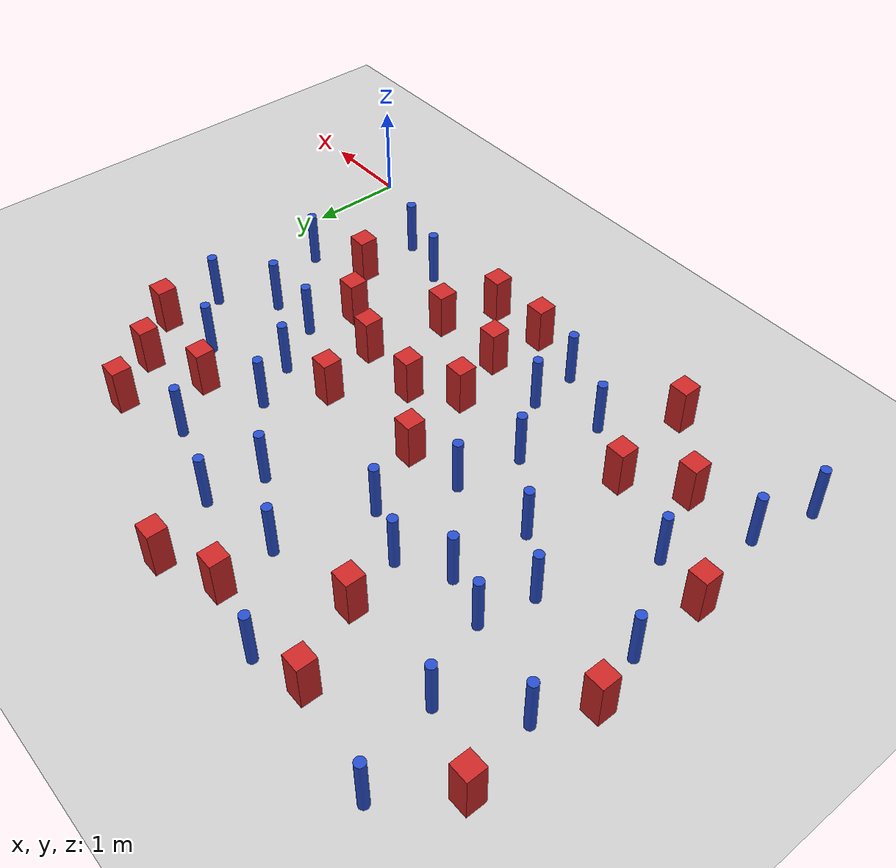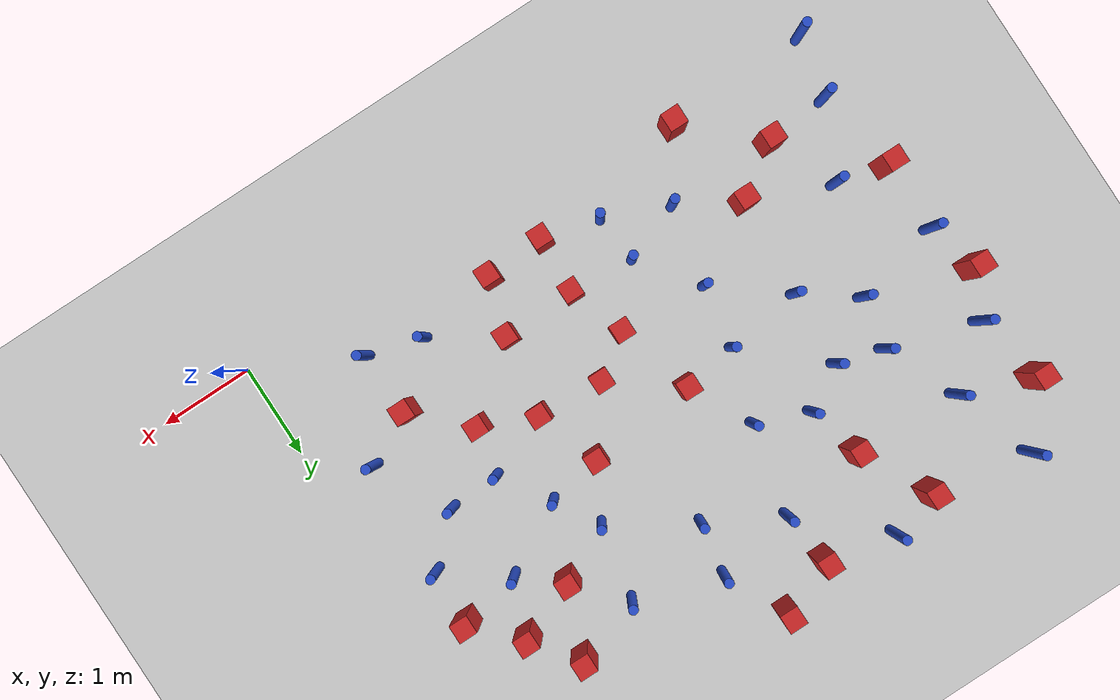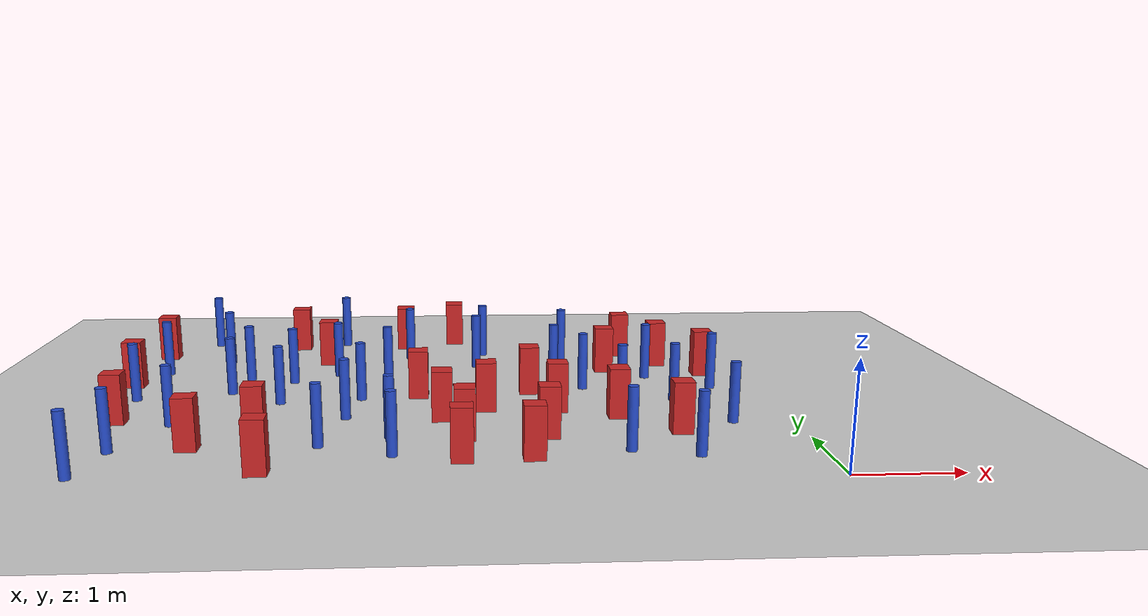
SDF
<sdf version="1.6">
 <world name="default">
  <model name="ground_plane">
   <static>1</static>
   <link name="link">
    <collision name="collision">
     <geometry><plane><normal>0 0 1</normal><size>100 100</size></plane></geometry>
     <surface><friction><ode><mu>100</mu><mu2>50</mu2></ode></friction></surface>
    </collision>
    <visual name="visual">
     <cast_shadows>0</cast_shadows>
     <geometry><plane><normal>0 0 1</normal><size>100 100</size></plane></geometry>
     <material>
      <ambient>1.0 1.0 1.0 1.0</ambient>
      <diffuse>0.8 0.8 0.8 1.0</diffuse>
      <specular>0.01 0.01 0.01 1.000000</specular>
     </material>
    </visual>
   </link>
  </model>
  <model name="pole_obstacle1">
   <static>true</static>
   <pose>-4.2360421505 2.48236113303 7.38925637345e-09 -8.47170692798e-08 1.24976764937e-08 -1.74513093023e-07</pose>
   <link name="link">
    <pose>0 0 0.3 0 -0 0</pose>
    <inertial>
     <mass>1</mass>
     <inertia><ixx>0.145833</ixx><ixy>0</ixy><ixz>0</ixz><iyy>0.145833</iyy><iyz>0</iyz><izz>0.125</izz></inertia>
    </inertial>
    <collision name="collision">
     <geometry><cylinder><radius>0.05</radius><length>.6</length></cylinder></geometry>
    </collision>
    <visual name="visual">
     <geometry><cylinder><radius>0.05</radius><length>.6</length></cylinder></geometry>
     <material>
      <script><name>Gazebo/Blue</name><uri>file://media/materials/scripts/gazebo.material</uri></script>
     </material>
    </visual>
   </link>
  </model>
  <model name="square_post_obstacle6">
   <static>true</static>
   <pose>-3.19749269244 1.14197946729 1.91545236811e-07 -7.35059704564e-06 1.12565212e-07 2.39332434364e-05</pose>
   <link name="link">
    <pose>0 0 0.25 0 -0 0</pose>
    <inertial>
     <mass>100</mass>
     <inertia>
      <ixx>0.166667</ixx>
      <ixy>0</ixy>
      <ixz>0</ixz>
      <iyy>0.166667</iyy>
      <iyz>0</iyz>
      <izz>0.166667</izz>
     </inertia>
    </inertial>
    <collision name="collision"><geometry><box><size>.2 .2 .5</size></box></geometry></collision>
    <visual name="visual">
     <geometry><box><size>.2 .2 .5</size></box></geometry>
     <material>
      <script><name>Gazebo/Red</name><uri>file://media/materials/scripts/gazebo.material</uri></script>
     </material>
    </visual>
   </link>
  </model>
  <model name="square_post_obstacle12">
   <static>true</static>
   <pose>-3.40680719447 1.74488713327 1.91545236811e-07 -7.35059704564e-06 1.12565212e-07 2.39332434364e-05</pose>
   <link name="link">
    <pose>0 0 0.25 0 -0 0</pose>
    <inertial>
     <mass>100</mass>
     <inertia>
      <ixx>0.166667</ixx>
      <ixy>0</ixy>
      <ixz>0</ixz>
      <iyy>0.166667</iyy>
      <iyz>0</iyz>
      <izz>0.166667</izz>
     </inertia>
    </inertial>
    <collision name="collision"><geometry><box><size>.2 .2 .5</size></box></geometry></collision>
    <visual name="visual">
     <geometry><box><size>.2 .2 .5</size></box></geometry>
     <material>
      <script><name>Gazebo/Red</name><uri>file://media/materials/scripts/gazebo.material</uri></script>
     </material>
    </visual>
   </link>
  </model>
  <model name="square_post_obstacle17">
   <static>true</static>
   <pose>-5.67544785788 0.962281058583 1.91545236811e-07 -7.35059704564e-06 1.12565212e-07 2.39332434364e-05</pose>
   <link name="link">
    <pose>0 0 0.25 0 -0 0</pose>
    <inertial>
     <mass>100</mass>
     <inertia>
      <ixx>0.166667</ixx>
      <ixy>0</ixy>
      <ixz>0</ixz>
      <iyy>0.166667</iyy>
      <iyz>0</iyz>
      <izz>0.166667</izz>
     </inertia>
    </inertial>
    <collision name="collision"><geometry><box><size>.2 .2 .5</size></box></geometry></collision>
    <visual name="visual">
     <geometry><box><size>.2 .2 .5</size></box></geometry>
     <material>
      <script><name>Gazebo/Red</name><uri>file://media/materials/scripts/gazebo.material</uri></script>
     </material>
    </visual>
   </link>
  </model>
  <model name="pole_obstacle29">
   <static>true</static>
   <pose>-5.50109739232 3.32762876711 7.38925637345e-09 -8.47170692798e-08 1.24976764937e-08 -1.74513093023e-07</pose>
   <link name="link">
    <pose>0 0 0.3 0 -0 0</pose>
    <inertial>
     <mass>1</mass>
     <inertia><ixx>0.145833</ixx><ixy>0</ixy><ixz>0</ixz><iyy>0.145833</iyy><iyz>0</iyz><izz>0.125</izz></inertia>
    </inertial>
    <collision name="collision">
     <geometry><cylinder><radius>0.05</radius><length>.6</length></cylinder></geometry>
    </collision>
    <visual name="visual">
     <geometry><cylinder><radius>0.05</radius><length>.6</length></cylinder></geometry>
     <material>
      <script><name>Gazebo/Blue</name><uri>file://media/materials/scripts/gazebo.material</uri></script>
     </material>
    </visual>
   </link>
  </model>
  <model name="square_post_obstacle24">
   <static>true</static>
   <pose>-6.54042031129 1.79965636281 1.91545236811e-07 -7.35059704564e-06 1.12565212e-07 2.39332434364e-05</pose>
   <link name="link">
    <pose>0 0 0.25 0 -0 0</pose>
    <inertial>
     <mass>100</mass>
     <inertia>
      <ixx>0.166667</ixx>
      <ixy>0</ixy>
      <ixz>0</ixz>
      <iyy>0.166667</iyy>
      <iyz>0</iyz>
      <izz>0.166667</izz>
     </inertia>
    </inertial>
    <collision name="collision"><geometry><box><size>.2 .2 .5</size></box></geometry></collision>
    <visual name="visual">
     <geometry><box><size>.2 .2 .5</size></box></geometry>
     <material>
      <script><name>Gazebo/Red</name><uri>file://media/materials/scripts/gazebo.material</uri></script>
     </material>
    </visual>
   </link>
  </model>
  <model name="pole_obstacle36">
   <static>true</static>
   <pose>-1.17242458827 3.20401034558 7.38925637345e-09 -8.47170692799e-08 1.24976765053e-08 -1.74513093017e-07</pose>
   <link name="link">
    <pose>0 0 0.3 0 -0 0</pose>
    <inertial>
     <mass>1</mass>
     <inertia><ixx>0.145833</ixx><ixy>0</ixy><ixz>0</ixz><iyy>0.145833</iyy><iyz>0</iyz><izz>0.125</izz></inertia>
    </inertial>
    <collision name="collision">
     <geometry><cylinder><radius>0.05</radius><length>.6</length></cylinder></geometry>
    </collision>
    <visual name="visual">
     <geometry><cylinder><radius>0.05</radius><length>.6</length></cylinder></geometry>
     <material>
      <script><name>Gazebo/Blue</name><uri>file://media/materials/scripts/gazebo.material</uri></script>
     </material>
    </visual>
   </link>
  </model>
  <model name="pole_obstacle37">
   <static>true</static>
   <pose>-0.548030401633 2.74096861442 7.38925637345e-09 -8.47170692799e-08 1.24976765084e-08 -1.74513093016e-07</pose>
   <link name="link">
    <pose>0 0 0.3 0 -0 0</pose>
    <inertial>
     <mass>1</mass>
     <inertia><ixx>0.145833</ixx><ixy>0</ixy><ixz>0</ixz><iyy>0.145833</iyy><iyz>0</iyz><izz>0.125</izz></inertia>
    </inertial>
    <collision name="collision">
     <geometry><cylinder><radius>0.05</radius><length>.6</length></cylinder></geometry>
    </collision>
    <visual name="visual">
     <geometry><cylinder><radius>0.05</radius><length>.6</length></cylinder></geometry>
     <material>
      <script><name>Gazebo/Blue</name><uri>file://media/materials/scripts/gazebo.material</uri></script>
     </material>
    </visual>
   </link>
  </model>
  <model name="pole_obstacle40">
   <static>true</static>
   <pose>-3.99607726309 3.23321874853 7.38925637345e-09 -8.47170692797e-08 1.24976764812e-08 -1.74513093031e-07</pose>
   <link name="link">
    <pose>0 0 0.3 0 -0 0</pose>
    <inertial>
     <mass>1</mass>
     <inertia><ixx>0.145833</ixx><ixy>0</ixy><ixz>0</ixz><iyy>0.145833</iyy><iyz>0</iyz><izz>0.125</izz></inertia>
    </inertial>
    <collision name="collision">
     <geometry><cylinder><radius>0.05</radius><length>.6</length></cylinder></geometry>
    </collision>
    <visual name="visual">
     <geometry><cylinder><radius>0.05</radius><length>.6</length></cylinder></geometry>
     <material>
      <script><name>Gazebo/Blue</name><uri>file://media/materials/scripts/gazebo.material</uri></script>
     </material>
    </visual>
   </link>
  </model>
  <model name="pole_obstacle53">
   <static>true</static>
   <pose>-1.72043356303 0.71661283262 7.38925637345e-09 -8.47170692799e-08 1.24976765075e-08 -1.74513093017e-07</pose>
   <link name="link">
    <pose>0 0 0.3 0 -0 0</pose>
    <inertial>
     <mass>1</mass>
     <inertia><ixx>0.145833</ixx><ixy>0</ixy><ixz>0</ixz><iyy>0.145833</iyy><iyz>0</iyz><izz>0.125</izz></inertia>
    </inertial>
    <collision name="collision">
     <geometry><cylinder><radius>0.05</radius><length>.6</length></cylinder></geometry>
    </collision>
    <visual name="visual">
     <geometry><cylinder><radius>0.05</radius><length>.6</length></cylinder></geometry>
     <material>
      <script><name>Gazebo/Blue</name><uri>file://media/materials/scripts/gazebo.material</uri></script>
     </material>
    </visual>
   </link>
  </model>
  <model name="square_post_obstacle47">
   <static>true</static>
   <pose>-2.49701756977 2.6727672284 1.91545236811e-07 -7.35059704564e-06 1.12565212e-07 2.39332434364e-05</pose>
   <link name="link">
    <pose>0 0 0.25 0 -0 0</pose>
    <inertial>
     <mass>100</mass>
     <inertia>
      <ixx>0.166667</ixx>
      <ixy>0</ixy>
      <ixz>0</ixz>
      <iyy>0.166667</iyy>
      <iyz>0</iyz>
      <izz>0.166667</izz>
     </inertia>
    </inertial>
    <collision name="collision"><geometry><box><size>.2 .2 .5</size></box></geometry></collision>
    <visual name="visual">
     <geometry><box><size>.2 .2 .5</size></box></geometry>
     <material>
      <script><name>Gazebo/Red</name><uri>file://media/materials/scripts/gazebo.material</uri></script>
     </material>
    </visual>
   </link>
  </model>
  <model name="pole_obstacle64">
   <static>true</static>
   <pose>-5.0129639751 3.18422711281 7.38925637345e-09 -8.47170692798e-08 1.24976764937e-08 -1.74513093023e-07</pose>
   <link name="link">
    <pose>0 0 0.3 0 -0 0</pose>
    <inertial>
     <mass>1</mass>
     <inertia><ixx>0.145833</ixx><ixy>0</ixy><ixz>0</ixz><iyy>0.145833</iyy><iyz>0</iyz><izz>0.125</izz></inertia>
    </inertial>
    <collision name="collision">
     <geometry><cylinder><radius>0.05</radius><length>.6</length></cylinder></geometry>
    </collision>
    <visual name="visual">
     <geometry><cylinder><radius>0.05</radius><length>.6</length></cylinder></geometry>
     <material>
      <script><name>Gazebo/Blue</name><uri>file://media/materials/scripts/gazebo.material</uri></script>
     </material>
    </visual>
   </link>
  </model>
  <model name="pole_obstacle65">
   <static>true</static>
   <pose>-6.50943564989 0.240296556773 7.38925637345e-09 -8.471706928e-08 1.24976765136e-08 -1.74513093014e-07</pose>
   <link name="link">
    <pose>0 0 0.3 0 -0 0</pose>
    <inertial>
     <mass>1</mass>
     <inertia><ixx>0.145833</ixx><ixy>0</ixy><ixz>0</ixz><iyy>0.145833</iyy><iyz>0</iyz><izz>0.125</izz></inertia>
    </inertial>
    <collision name="collision">
     <geometry><cylinder><radius>0.05</radius><length>.6</length></cylinder></geometry>
    </collision>
    <visual name="visual">
     <geometry><cylinder><radius>0.05</radius><length>.6</length></cylinder></geometry>
     <material>
      <script><name>Gazebo/Blue</name><uri>file://media/materials/scripts/gazebo.material</uri></script>
     </material>
    </visual>
   </link>
  </model>
  <model name="pole_obstacle66">
   <static>true</static>
   <pose>-4.55013554658 3.45695690446 7.38925637345e-09 -8.47170692798e-08 1.24976764937e-08 -1.74513093023e-07</pose>
   <link name="link">
    <pose>0 0 0.3 0 -0 0</pose>
    <inertial>
     <mass>1</mass>
     <inertia><ixx>0.145833</ixx><ixy>0</ixy><ixz>0</ixz><iyy>0.145833</iyy><iyz>0</iyz><izz>0.125</izz></inertia>
    </inertial>
    <collision name="collision">
     <geometry><cylinder><radius>0.05</radius><length>.6</length></cylinder></geometry>
    </collision>
    <visual name="visual">
     <geometry><cylinder><radius>0.05</radius><length>.6</length></cylinder></geometry>
     <material>
      <script><name>Gazebo/Blue</name><uri>file://media/materials/scripts/gazebo.material</uri></script>
     </material>
    </visual>
   </link>
  </model>
  <model name="square_post_obstacle50">
   <static>true</static>
   <pose>-6.61699101797 4.38110211461 1.91545236811e-07 -7.35059704564e-06 1.12565212e-07 2.39332434364e-05</pose>
   <link name="link">
    <pose>0 0 0.25 0 -0 0</pose>
    <inertial>
     <mass>100</mass>
     <inertia>
      <ixx>0.166667</ixx>
      <ixy>0</ixy>
      <ixz>0</ixz>
      <iyy>0.166667</iyy>
      <iyz>0</iyz>
      <izz>0.166667</izz>
     </inertia>
    </inertial>
    <collision name="collision"><geometry><box><size>.2 .2 .5</size></box></geometry></collision>
    <visual name="visual">
     <geometry><box><size>.2 .2 .5</size></box></geometry>
     <material>
      <script><name>Gazebo/Red</name><uri>file://media/materials/scripts/gazebo.material</uri></script>
     </material>
    </visual>
   </link>
  </model>
  <model name="square_post_obstacle59">
   <static>true</static>
   <pose>-5.13547339799 1.32071894448 1.91545236811e-07 -7.35059704564e-06 1.12565212e-07 2.39332434364e-05</pose>
   <link name="link">
    <pose>0 0 0.25 0 -0 0</pose>
    <inertial>
     <mass>100</mass>
     <inertia>
      <ixx>0.166667</ixx>
      <ixy>0</ixy>
      <ixz>0</ixz>
      <iyy>0.166667</iyy>
      <iyz>0</iyz>
      <izz>0.166667</izz>
     </inertia>
    </inertial>
    <collision name="collision"><geometry><box><size>.2 .2 .5</size></box></geometry></collision>
    <visual name="visual">
     <geometry><box><size>.2 .2 .5</size></box></geometry>
     <material>
      <script><name>Gazebo/Red</name><uri>file://media/materials/scripts/gazebo.material</uri></script>
     </material>
    </visual>
   </link>
  </model>
  <model name="pole_obstacle71">
   <static>true</static>
   <pose>-1.13200319283 0.549994442795 7.38925637345e-09 -8.47170692799e-08 1.24976765051e-08 -1.74513093017e-07</pose>
   <link name="link">
    <pose>0 0 0.3 0 -0 0</pose>
    <inertial>
     <mass>1</mass>
     <inertia><ixx>0.145833</ixx><ixy>0</ixy><ixz>0</ixz><iyy>0.145833</iyy><iyz>0</iyz><izz>0.125</izz></inertia>
    </inertial>
    <collision name="collision">
     <geometry><cylinder><radius>0.05</radius><length>.6</length></cylinder></geometry>
    </collision>
    <visual name="visual">
     <geometry><cylinder><radius>0.05</radius><length>.6</length></cylinder></geometry>
     <material>
      <script><name>Gazebo/Blue</name><uri>file://media/materials/scripts/gazebo.material</uri></script>
     </material>
    </visual>
   </link>
  </model>
  <model name="pole_obstacle72">
   <static>true</static>
   <pose>-6.45422483924 3.61848141426 7.38925637345e-09 -8.47170692798e-08 1.24976764937e-08 -1.74513093023e-07</pose>
   <link name="link">
    <pose>0 0 0.3 0 -0 0</pose>
    <inertial>
     <mass>1</mass>
     <inertia><ixx>0.145833</ixx><ixy>0</ixy><ixz>0</ixz><iyy>0.145833</iyy><iyz>0</iyz><izz>0.125</izz></inertia>
    </inertial>
    <collision name="collision">
     <geometry><cylinder><radius>0.05</radius><length>.6</length></cylinder></geometry>
    </collision>
    <visual name="visual">
     <geometry><cylinder><radius>0.05</radius><length>.6</length></cylinder></geometry>
     <material>
      <script><name>Gazebo/Blue</name><uri>file://media/materials/scripts/gazebo.material</uri></script>
     </material>
    </visual>
   </link>
  </model>
  <model name="square_post_obstacle62">
   <static>true</static>
   <pose>-0.951710930799 3.79193985902 1.91545236811e-07 -7.35059704564e-06 1.12565212e-07 2.39332434364e-05</pose>
   <link name="link">
    <pose>0 0 0.25 0 -0 0</pose>
    <inertial>
     <mass>100</mass>
     <inertia>
      <ixx>0.166667</ixx>
      <ixy>0</ixy>
      <ixz>0</ixz>
      <iyy>0.166667</iyy>
      <iyz>0</iyz>
      <izz>0.166667</izz>
     </inertia>
    </inertial>
    <collision name="collision"><geometry><box><size>.2 .2 .5</size></box></geometry></collision>
    <visual name="visual">
     <geometry><box><size>.2 .2 .5</size></box></geometry>
     <material>
      <script><name>Gazebo/Red</name><uri>file://media/materials/scripts/gazebo.material</uri></script>
     </material>
    </visual>
   </link>
  </model>
  <model name="pole_obstacle79">
   <static>true</static>
   <pose>-4.51929696616 0.965388833062 7.38925637345e-09 -8.471706928e-08 1.24976765166e-08 -1.74513093011e-07</pose>
   <link name="link">
    <pose>0 0 0.3 0 -0 0</pose>
    <inertial>
     <mass>1</mass>
     <inertia><ixx>0.145833</ixx><ixy>0</ixy><ixz>0</ixz><iyy>0.145833</iyy><iyz>0</iyz><izz>0.125</izz></inertia>
    </inertial>
    <collision name="collision">
     <geometry><cylinder><radius>0.05</radius><length>.6</length></cylinder></geometry>
    </collision>
    <visual name="visual">
     <geometry><cylinder><radius>0.05</radius><length>.6</length></cylinder></geometry>
     <material>
      <script><name>Gazebo/Blue</name><uri>file://media/materials/scripts/gazebo.material</uri></script>
     </material>
    </visual>
   </link>
  </model>
  <model name="pole_obstacle88">
   <static>true</static>
   <pose>-6.3632418033 0.899988171952 7.38925637345e-09 -8.47170692799e-08 1.24976765038e-08 -1.74513093018e-07</pose>
   <link name="link">
    <pose>0 0 0.3 0 -0 0</pose>
    <inertial>
     <mass>1</mass>
     <inertia><ixx>0.145833</ixx><ixy>0</ixy><ixz>0</ixz><iyy>0.145833</iyy><iyz>0</iyz><izz>0.125</izz></inertia>
    </inertial>
    <collision name="collision">
     <geometry><cylinder><radius>0.05</radius><length>.6</length></cylinder></geometry>
    </collision>
    <visual name="visual">
     <geometry><cylinder><radius>0.05</radius><length>.6</length></cylinder></geometry>
     <material>
      <script><name>Gazebo/Blue</name><uri>file://media/materials/scripts/gazebo.material</uri></script>
     </material>
    </visual>
   </link>
  </model>
  <model name="square_post_obstacle78">
   <static>true</static>
   <pose>-5.10941186336 4.78435437416 1.91545236811e-07 -7.35059704564e-06 1.12565212e-07 2.39332434364e-05</pose>
   <link name="link">
    <pose>0 0 0.25 0 -0 0</pose>
    <inertial>
     <mass>100</mass>
     <inertia>
      <ixx>0.166667</ixx>
      <ixy>0</ixy>
      <ixz>0</ixz>
      <iyy>0.166667</iyy>
      <iyz>0</iyz>
      <izz>0.166667</izz>
     </inertia>
    </inertial>
    <collision name="collision"><geometry><box><size>.2 .2 .5</size></box></geometry></collision>
    <visual name="visual">
     <geometry><box><size>.2 .2 .5</size></box></geometry>
     <material>
      <script><name>Gazebo/Red</name><uri>file://media/materials/scripts/gazebo.material</uri></script>
     </material>
    </visual>
   </link>
  </model>
  <model name="pole_obstacle89">
   <static>true</static>
   <pose>-6.15603214442 4.98619996309 7.38925637345e-09 -8.47170692796e-08 1.24976764786e-08 -1.74513093032e-07</pose>
   <link name="link">
    <pose>0 0 0.3 0 -0 0</pose>
    <inertial>
     <mass>1</mass>
     <inertia><ixx>0.145833</ixx><ixy>0</ixy><ixz>0</ixz><iyy>0.145833</iyy><iyz>0</iyz><izz>0.125</izz></inertia>
    </inertial>
    <collision name="collision">
     <geometry><cylinder><radius>0.05</radius><length>.6</length></cylinder></geometry>
    </collision>
    <visual name="visual">
     <geometry><cylinder><radius>0.05</radius><length>.6</length></cylinder></geometry>
     <material>
      <script><name>Gazebo/Blue</name><uri>file://media/materials/scripts/gazebo.material</uri></script>
     </material>
    </visual>
   </link>
  </model>
  <model name="square_post_obstacle85">
   <static>true</static>
   <pose>-2.26279785756 1.99849056249 1.91545236811e-07 -7.35059704564e-06 1.12565212e-07 2.39332434364e-05</pose>
   <link name="link">
    <pose>0 0 0.25 0 -0 0</pose>
    <inertial>
     <mass>100</mass>
     <inertia>
      <ixx>0.166667</ixx>
      <ixy>0</ixy>
      <ixz>0</ixz>
      <iyy>0.166667</iyy>
      <iyz>0</iyz>
      <izz>0.166667</izz>
     </inertia>
    </inertial>
    <collision name="collision"><geometry><box><size>.2 .2 .5</size></box></geometry></collision>
    <visual name="visual">
     <geometry><box><size>.2 .2 .5</size></box></geometry>
     <material>
      <script><name>Gazebo/Red</name><uri>file://media/materials/scripts/gazebo.material</uri></script>
     </material>
    </visual>
   </link>
  </model>
  <model name="square_post_obstacle86">
   <static>true</static>
   <pose>-2.41820028607 1.16444975487 1.91545236811e-07 -7.35059704564e-06 1.12565212e-07 2.39332434364e-05</pose>
   <link name="link">
    <pose>0 0 0.25 0 -0 0</pose>
    <inertial>
     <mass>100</mass>
     <inertia>
      <ixx>0.166667</ixx>
      <ixy>0</ixy>
      <ixz>0</ixz>
      <iyy>0.166667</iyy>
      <iyz>0</iyz>
      <izz>0.166667</izz>
     </inertia>
    </inertial>
    <collision name="collision"><geometry><box><size>.2 .2 .5</size></box></geometry></collision>
    <visual name="visual">
     <geometry><box><size>.2 .2 .5</size></box></geometry>
     <material>
      <script><name>Gazebo/Red</name><uri>file://media/materials/scripts/gazebo.material</uri></script>
     </material>
    </visual>
   </link>
  </model>
  <model name="pole_obstacle100">
   <static>true</static>
   <pose>-0.605797346407 1.51551499743 7.38925637345e-09 -8.47170692799e-08 1.24976765033e-08 -1.7451309302e-07</pose>
   <link name="link">
    <pose>0 0 0.3 0 -0 0</pose>
    <inertial>
     <mass>1</mass>
     <inertia><ixx>0.145833</ixx><ixy>0</ixy><ixz>0</ixz><iyy>0.145833</iyy><iyz>0</iyz><izz>0.125</izz></inertia>
    </inertial>
    <collision name="collision">
     <geometry><cylinder><radius>0.05</radius><length>.6</length></cylinder></geometry>
    </collision>
    <visual name="visual">
     <geometry><cylinder><radius>0.05</radius><length>.6</length></cylinder></geometry>
     <material>
      <script><name>Gazebo/Blue</name><uri>file://media/materials/scripts/gazebo.material</uri></script>
     </material>
    </visual>
   </link>
  </model>
  <model name="square_post_obstacle95">
   <static>true</static>
   <pose>-4.71229022899 4.03396715074 1.91545236811e-07 -7.35059704564e-06 1.12565212e-07 2.39332434364e-05</pose>
   <link name="link">
    <pose>0 0 0.25 0 -0 0</pose>
    <inertial>
     <mass>100</mass>
     <inertia>
      <ixx>0.166667</ixx>
      <ixy>0</ixy>
      <ixz>0</ixz>
      <iyy>0.166667</iyy>
      <iyz>0</iyz>
      <izz>0.166667</izz>
     </inertia>
    </inertial>
    <collision name="collision"><geometry><box><size>.2 .2 .5</size></box></geometry></collision>
    <visual name="visual">
     <geometry><box><size>.2 .2 .5</size></box></geometry>
     <material>
      <script><name>Gazebo/Red</name><uri>file://media/materials/scripts/gazebo.material</uri></script>
     </material>
    </visual>
   </link>
  </model>
  <model name="square_post_obstacle100">
   <static>true</static>
   <pose>-1.68737316467 1.75894810027 1.91545236811e-07 -7.35059704564e-06 1.12565212e-07 2.39332434364e-05</pose>
   <link name="link">
    <pose>0 0 0.25 0 -0 0</pose>
    <inertial>
     <mass>100</mass>
     <inertia>
      <ixx>0.166667</ixx>
      <ixy>0</ixy>
      <ixz>0</ixz>
      <iyy>0.166667</iyy>
      <iyz>0</iyz>
      <izz>0.166667</izz>
     </inertia>
    </inertial>
    <collision name="collision"><geometry><box><size>.2 .2 .5</size></box></geometry></collision>
    <visual name="visual">
     <geometry><box><size>.2 .2 .5</size></box></geometry>
     <material>
      <script><name>Gazebo/Red</name><uri>file://media/materials/scripts/gazebo.material</uri></script>
     </material>
    </visual>
   </link>
  </model>
  <model name="pole_obstacle108">
   <static>true</static>
   <pose>-1.02901272563 2.29917134424 7.38925637345e-09 -8.47170692799e-08 1.24976765076e-08 -1.74513093016e-07</pose>
   <link name="link">
    <pose>0 0 0.3 0 -0 0</pose>
    <inertial>
     <mass>1</mass>
     <inertia><ixx>0.145833</ixx><ixy>0</ixy><ixz>0</ixz><iyy>0.145833</iyy><iyz>0</iyz><izz>0.125</izz></inertia>
    </inertial>
    <collision name="collision">
     <geometry><cylinder><radius>0.05</radius><length>.6</length></cylinder></geometry>
    </collision>
    <visual name="visual">
     <geometry><cylinder><radius>0.05</radius><length>.6</length></cylinder></geometry>
     <material>
      <script><name>Gazebo/Blue</name><uri>file://media/materials/scripts/gazebo.material</uri></script>
     </material>
    </visual>
   </link>
  </model>
  <model name="pole_obstacle110">
   <static>true</static>
   <pose>-2.18471386051 3.24580752355 7.38925637345e-09 -8.47170692798e-08 1.24976764939e-08 -1.74513093025e-07</pose>
   <link name="link">
    <pose>0 0 0.3 0 -0 0</pose>
    <inertial>
     <mass>1</mass>
     <inertia><ixx>0.145833</ixx><ixy>0</ixy><ixz>0</ixz><iyy>0.145833</iyy><iyz>0</iyz><izz>0.125</izz></inertia>
    </inertial>
    <collision name="collision">
     <geometry><cylinder><radius>0.05</radius><length>.6</length></cylinder></geometry>
    </collision>
    <visual name="visual">
     <geometry><cylinder><radius>0.05</radius><length>.6</length></cylinder></geometry>
     <material>
      <script><name>Gazebo/Blue</name><uri>file://media/materials/scripts/gazebo.material</uri></script>
     </material>
    </visual>
   </link>
  </model>
  <model name="square_post_obstacle104">
   <static>true</static>
   <pose>-2.59971655476 0.569219339135 1.91545236811e-07 -7.35059704564e-06 1.12565212e-07 2.39332434364e-05</pose>
   <link name="link">
    <pose>0 0 0.25 0 -0 0</pose>
    <inertial>
     <mass>100</mass>
     <inertia>
      <ixx>0.166667</ixx>
      <ixy>0</ixy>
      <ixz>0</ixz>
      <iyy>0.166667</iyy>
      <iyz>0</iyz>
      <izz>0.166667</izz>
     </inertia>
    </inertial>
    <collision name="collision"><geometry><box><size>.2 .2 .5</size></box></geometry></collision>
    <visual name="visual">
     <geometry><box><size>.2 .2 .5</size></box></geometry>
     <material>
      <script><name>Gazebo/Red</name><uri>file://media/materials/scripts/gazebo.material</uri></script>
     </material>
    </visual>
   </link>
  </model>
  <model name="square_post_obstacle105">
   <static>true</static>
   <pose>-1.59325804699 3.53784390911 1.91545236811e-07 -7.35059704564e-06 1.12565212e-07 2.39332434364e-05</pose>
   <link name="link">
    <pose>0 0 0.25 0 -0 0</pose>
    <inertial>
     <mass>100</mass>
     <inertia>
      <ixx>0.166667</ixx>
      <ixy>0</ixy>
      <ixz>0</ixz>
      <iyy>0.166667</iyy>
      <iyz>0</iyz>
      <izz>0.166667</izz>
     </inertia>
    </inertial>
    <collision name="collision"><geometry><box><size>.2 .2 .5</size></box></geometry></collision>
    <visual name="visual">
     <geometry><box><size>.2 .2 .5</size></box></geometry>
     <material>
      <script><name>Gazebo/Red</name><uri>file://media/materials/scripts/gazebo.material</uri></script>
     </material>
    </visual>
   </link>
  </model>
  <model name="square_post_obstacle115">
   <static>true</static>
   <pose>-1.16796325414 1.23793346352 1.91545236811e-07 -7.35059704564e-06 1.12565212e-07 2.39332434364e-05</pose>
   <link name="link">
    <pose>0 0 0.25 0 -0 0</pose>
    <inertial>
     <mass>100</mass>
     <inertia>
      <ixx>0.166667</ixx>
      <ixy>0</ixy>
      <ixz>0</ixz>
      <iyy>0.166667</iyy>
      <iyz>0</iyz>
      <izz>0.166667</izz>
     </inertia>
    </inertial>
    <collision name="collision"><geometry><box><size>.2 .2 .5</size></box></geometry></collision>
    <visual name="visual">
     <geometry><box><size>.2 .2 .5</size></box></geometry>
     <material>
      <script><name>Gazebo/Red</name><uri>file://media/materials/scripts/gazebo.material</uri></script>
     </material>
    </visual>
   </link>
  </model>
  <model name="pole_obstacle117">
   <static>true</static>
   <pose>-4.58701533412 4.93335976795 7.38925637345e-09 -8.47170692796e-08 1.24976764786e-08 -1.74513093032e-07</pose>
   <link name="link">
    <pose>0 0 0.3 0 -0 0</pose>
    <inertial>
     <mass>1</mass>
     <inertia><ixx>0.145833</ixx><ixy>0</ixy><ixz>0</ixz><iyy>0.145833</iyy><iyz>0</iyz><izz>0.125</izz></inertia>
    </inertial>
    <collision name="collision">
     <geometry><cylinder><radius>0.05</radius><length>.6</length></cylinder></geometry>
    </collision>
    <visual name="visual">
     <geometry><cylinder><radius>0.05</radius><length>.6</length></cylinder></geometry>
     <material>
      <script><name>Gazebo/Blue</name><uri>file://media/materials/scripts/gazebo.material</uri></script>
     </material>
    </visual>
   </link>
  </model>
  <model name="square_post_obstacle117">
   <static>true</static>
   <pose>-3.25923962311 5.01167851205 1.91545236811e-07 -7.35059704564e-06 1.12565212e-07 2.39332434364e-05</pose>
   <link name="link">
    <pose>0 0 0.25 0 -0 0</pose>
    <inertial>
     <mass>100</mass>
     <inertia>
      <ixx>0.166667</ixx>
      <ixy>0</ixy>
      <ixz>0</ixz>
      <iyy>0.166667</iyy>
      <iyz>0</iyz>
      <izz>0.166667</izz>
     </inertia>
    </inertial>
    <collision name="collision"><geometry><box><size>.2 .2 .5</size></box></geometry></collision>
    <visual name="visual">
     <geometry><box><size>.2 .2 .5</size></box></geometry>
     <material>
      <script><name>Gazebo/Red</name><uri>file://media/materials/scripts/gazebo.material</uri></script>
     </material>
    </visual>
   </link>
  </model>
  <model name="pole_obstacle121">
   <static>true</static>
   <pose>-4.34355833564 1.81590467324 7.38925637345e-09 -8.471706928e-08 1.24976765134e-08 -1.74513093015e-07</pose>
   <link name="link">
    <pose>0 0 0.3 0 -0 0</pose>
    <inertial>
     <mass>1</mass>
     <inertia><ixx>0.145833</ixx><ixy>0</ixy><ixz>0</ixz><iyy>0.145833</iyy><iyz>0</iyz><izz>0.125</izz></inertia>
    </inertial>
    <collision name="collision">
     <geometry><cylinder><radius>0.05</radius><length>.6</length></cylinder></geometry>
    </collision>
    <visual name="visual">
     <geometry><cylinder><radius>0.05</radius><length>.6</length></cylinder></geometry>
     <material>
      <script><name>Gazebo/Blue</name><uri>file://media/materials/scripts/gazebo.material</uri></script>
     </material>
    </visual>
   </link>
  </model>
  <model name="square_post_obstacle122">
   <static>true</static>
   <pose>-4.95530608511 0.2986781521 1.91545236811e-07 -7.35059704564e-06 1.12565212e-07 2.39332434364e-05</pose>
   <link name="link">
    <pose>0 0 0.25 0 -0 0</pose>
    <inertial>
     <mass>100</mass>
     <inertia>
      <ixx>0.166667</ixx>
      <ixy>0</ixy>
      <ixz>0</ixz>
      <iyy>0.166667</iyy>
      <iyz>0</iyz>
      <izz>0.166667</izz>
     </inertia>
    </inertial>
    <collision name="collision"><geometry><box><size>.2 .2 .5</size></box></geometry></collision>
    <visual name="visual">
     <geometry><box><size>.2 .2 .5</size></box></geometry>
     <material>
      <script><name>Gazebo/Red</name><uri>file://media/materials/scripts/gazebo.material</uri></script>
     </material>
    </visual>
   </link>
  </model>
  <model name="pole_obstacle140">
   <static>true</static>
   <pose>-3.78000680934 4.19343099483 7.38925637345e-09 -8.47170692798e-08 1.24976765033e-08 -1.74513093019e-07</pose>
   <link name="link">
    <pose>0 0 0.3 0 -0 0</pose>
    <inertial>
     <mass>1</mass>
     <inertia><ixx>0.145833</ixx><ixy>0</ixy><ixz>0</ixz><iyy>0.145833</iyy><iyz>0</iyz><izz>0.125</izz></inertia>
    </inertial>
    <collision name="collision">
     <geometry><cylinder><radius>0.05</radius><length>.6</length></cylinder></geometry>
    </collision>
    <visual name="visual">
     <geometry><cylinder><radius>0.05</radius><length>.6</length></cylinder></geometry>
     <material>
      <script><name>Gazebo/Blue</name><uri>file://media/materials/scripts/gazebo.material</uri></script>
     </material>
    </visual>
   </link>
  </model>
  <model name="pole_obstacle148">
   <static>true</static>
   <pose>-5.85630603391 4.10183003026 7.38925637345e-09 -8.47170692796e-08 1.24976764786e-08 -1.74513093032e-07</pose>
   <link name="link">
    <pose>0 0 0.3 0 -0 0</pose>
    <inertial>
     <mass>1</mass>
     <inertia><ixx>0.145833</ixx><ixy>0</ixy><ixz>0</ixz><iyy>0.145833</iyy><iyz>0</iyz><izz>0.125</izz></inertia>
    </inertial>
    <collision name="collision">
     <geometry><cylinder><radius>0.05</radius><length>.6</length></cylinder></geometry>
    </collision>
    <visual name="visual">
     <geometry><cylinder><radius>0.05</radius><length>.6</length></cylinder></geometry>
     <material>
      <script><name>Gazebo/Blue</name><uri>file://media/materials/scripts/gazebo.material</uri></script>
     </material>
    </visual>
   </link>
  </model>
  <model name="square_post_obstacle143">
   <static>true</static>
   <pose>-3.23247018313 0.541069426772 1.91545236811e-07 -7.35059704564e-06 1.12565212e-07 2.39332434364e-05</pose>
   <link name="link">
    <pose>0 0 0.25 0 -0 0</pose>
    <inertial>
     <mass>100</mass>
     <inertia>
      <ixx>0.166667</ixx>
      <ixy>0</ixy>
      <ixz>0</ixz>
      <iyy>0.166667</iyy>
      <iyz>0</iyz>
      <izz>0.166667</izz>
     </inertia>
    </inertial>
    <collision name="collision"><geometry><box><size>.2 .2 .5</size></box></geometry></collision>
    <visual name="visual">
     <geometry><box><size>.2 .2 .5</size></box></geometry>
     <material>
      <script><name>Gazebo/Red</name><uri>file://media/materials/scripts/gazebo.material</uri></script>
     </material>
    </visual>
   </link>
  </model>
  <model name="pole_obstacle154">
   <static>true</static>
   <pose>-2.92928624906 4.3426181103 7.38925637345e-09 -8.47170692798e-08 1.24976765033e-08 -1.74513093019e-07</pose>
   <link name="link">
    <pose>0 0 0.3 0 -0 0</pose>
    <inertial>
     <mass>1</mass>
     <inertia><ixx>0.145833</ixx><ixy>0</ixy><ixz>0</ixz><iyy>0.145833</iyy><iyz>0</iyz><izz>0.125</izz></inertia>
    </inertial>
    <collision name="collision">
     <geometry><cylinder><radius>0.05</radius><length>.6</length></cylinder></geometry>
    </collision>
    <visual name="visual">
     <geometry><cylinder><radius>0.05</radius><length>.6</length></cylinder></geometry>
     <material>
      <script><name>Gazebo/Blue</name><uri>file://media/materials/scripts/gazebo.material</uri></script>
     </material>
    </visual>
   </link>
  </model>
  <model name="square_post_obstacle152">
   <static>true</static>
   <pose>-1.3040818012 4.2820178025 1.91545236811e-07 -7.35059704564e-06 1.12565212e-07 2.39332434364e-05</pose>
   <link name="link">
    <pose>0 0 0.25 0 -0 0</pose>
    <inertial>
     <mass>100</mass>
     <inertia>
      <ixx>0.166667</ixx>
      <ixy>0</ixy>
      <ixz>0</ixz>
      <iyy>0.166667</iyy>
      <iyz>0</iyz>
      <izz>0.166667</izz>
     </inertia>
    </inertial>
    <collision name="collision"><geometry><box><size>.2 .2 .5</size></box></geometry></collision>
    <visual name="visual">
     <geometry><box><size>.2 .2 .5</size></box></geometry>
     <material>
      <script><name>Gazebo/Red</name><uri>file://media/materials/scripts/gazebo.material</uri></script>
     </material>
    </visual>
   </link>
  </model>
  <model name="square_post_obstacle153">
   <static>true</static>
   <pose>-6.69795101287 3.12403980571 1.91545236811e-07 -7.35059704564e-06 1.12565212e-07 2.39332434364e-05</pose>
   <link name="link">
    <pose>0 0 0.25 0 -0 0</pose>
    <inertial>
     <mass>100</mass>
     <inertia>
      <ixx>0.166667</ixx>
      <ixy>0</ixy>
      <ixz>0</ixz>
      <iyy>0.166667</iyy>
      <iyz>0</iyz>
      <izz>0.166667</izz>
     </inertia>
    </inertial>
    <collision name="collision"><geometry><box><size>.2 .2 .5</size></box></geometry></collision>
    <visual name="visual">
     <geometry><box><size>.2 .2 .5</size></box></geometry>
     <material>
      <script><name>Gazebo/Red</name><uri>file://media/materials/scripts/gazebo.material</uri></script>
     </material>
    </visual>
   </link>
  </model>
  <model name="pole_obstacle159">
   <static>true</static>
   <pose>-3.88759456878 1.1988701523 7.38925637345e-09 -8.471706928e-08 1.24976765152e-08 -1.74513093012e-07</pose>
   <link name="link">
    <pose>0 0 0.3 0 -0 0</pose>
    <inertial>
     <mass>1</mass>
     <inertia><ixx>0.145833</ixx><ixy>0</ixy><ixz>0</ixz><iyy>0.145833</iyy><iyz>0</iyz><izz>0.125</izz></inertia>
    </inertial>
    <collision name="collision">
     <geometry><cylinder><radius>0.05</radius><length>.6</length></cylinder></geometry>
    </collision>
    <visual name="visual">
     <geometry><cylinder><radius>0.05</radius><length>.6</length></cylinder></geometry>
     <material>
      <script><name>Gazebo/Blue</name><uri>file://media/materials/scripts/gazebo.material</uri></script>
     </material>
    </visual>
   </link>
  </model>
  <model name="square_post_obstacle163">
   <static>true</static>
   <pose>-3.85201039986 4.77234037084 1.91545236811e-07 -7.35059704564e-06 1.12565212e-07 2.39332434364e-05</pose>
   <link name="link">
    <pose>0 0 0.25 0 -0 0</pose>
    <inertial>
     <mass>100</mass>
     <inertia>
      <ixx>0.166667</ixx>
      <ixy>0</ixy>
      <ixz>0</ixz>
      <iyy>0.166667</iyy>
      <iyz>0</iyz>
      <izz>0.166667</izz>
     </inertia>
    </inertial>
    <collision name="collision"><geometry><box><size>.2 .2 .5</size></box></geometry></collision>
    <visual name="visual">
     <geometry><box><size>.2 .2 .5</size></box></geometry>
     <material>
      <script><name>Gazebo/Red</name><uri>file://media/materials/scripts/gazebo.material</uri></script>
     </material>
    </visual>
   </link>
  </model>
  <model name="pole_obstacle169">
   <static>true</static>
   <pose>-5.99793531107 1.67460354375 7.38925637345e-09 -8.471706928e-08 1.24976765134e-08 -1.74513093015e-07</pose>
   <link name="link">
    <pose>0 0 0.3 0 -0 0</pose>
    <inertial>
     <mass>1</mass>
     <inertia><ixx>0.145833</ixx><ixy>0</ixy><ixz>0</ixz><iyy>0.145833</iyy><iyz>0</iyz><izz>0.125</izz></inertia>
    </inertial>
    <collision name="collision">
     <geometry><cylinder><radius>0.05</radius><length>.6</length></cylinder></geometry>
    </collision>
    <visual name="visual">
     <geometry><cylinder><radius>0.05</radius><length>.6</length></cylinder></geometry>
     <material>
      <script><name>Gazebo/Blue</name><uri>file://media/materials/scripts/gazebo.material</uri></script>
     </material>
    </visual>
   </link>
  </model>
  <model name="pole_obstacle175">
   <static>true</static>
   <pose>-6.54471120329 2.57000228261 7.38925637345e-09 -8.47170692798e-08 1.24976764937e-08 -1.74513093023e-07</pose>
   <link name="link">
    <pose>0 0 0.3 0 -0 0</pose>
    <inertial>
     <mass>1</mass>
     <inertia><ixx>0.145833</ixx><ixy>0</ixy><ixz>0</ixz><iyy>0.145833</iyy><iyz>0</iyz><izz>0.125</izz></inertia>
    </inertial>
    <collision name="collision">
     <geometry><cylinder><radius>0.05</radius><length>.6</length></cylinder></geometry>
    </collision>
    <visual name="visual">
     <geometry><cylinder><radius>0.05</radius><length>.6</length></cylinder></geometry>
     <material>
      <script><name>Gazebo/Blue</name><uri>file://media/materials/scripts/gazebo.material</uri></script>
     </material>
    </visual>
   </link>
  </model>
  <model name="pole_obstacle182">
   <static>true</static>
   <pose>-2.01976309905 4.05294942346 7.38925637345e-09 -8.471706928e-08 1.24976765103e-08 -1.74513093015e-07</pose>
   <link name="link">
    <pose>0 0 0.3 0 -0 0</pose>
    <inertial>
     <mass>1</mass>
     <inertia><ixx>0.145833</ixx><ixy>0</ixy><ixz>0</ixz><iyy>0.145833</iyy><iyz>0</iyz><izz>0.125</izz></inertia>
    </inertial>
    <collision name="collision">
     <geometry><cylinder><radius>0.05</radius><length>.6</length></cylinder></geometry>
    </collision>
    <visual name="visual">
     <geometry><cylinder><radius>0.05</radius><length>.6</length></cylinder></geometry>
     <material>
      <script><name>Gazebo/Blue</name><uri>file://media/materials/scripts/gazebo.material</uri></script>
     </material>
    </visual>
   </link>
  </model>
  <model name="square_post_obstacle187">
   <static>true</static>
   <pose>-0.521502834919 3.33104936934 1.91545236811e-07 -7.35059704564e-06 1.12565212e-07 2.39332434364e-05</pose>
   <link name="link">
    <pose>0 0 0.25 0 -0 0</pose>
    <inertial>
     <mass>100</mass>
     <inertia>
      <ixx>0.166667</ixx>
      <ixy>0</ixy>
      <ixz>0</ixz>
      <iyy>0.166667</iyy>
      <iyz>0</iyz>
      <izz>0.166667</izz>
     </inertia>
    </inertial>
    <collision name="collision"><geometry><box><size>.2 .2 .5</size></box></geometry></collision>
    <visual name="visual">
     <geometry><box><size>.2 .2 .5</size></box></geometry>
     <material>
      <script><name>Gazebo/Red</name><uri>file://media/materials/scripts/gazebo.material</uri></script>
     </material>
    </visual>
   </link>
  </model>
  <model name="square_post_obstacle194">
   <static>true</static>
   <pose>-3.65020442513 2.56480172306 1.91545236811e-07 -7.35059704564e-06 1.12565212e-07 2.39332434364e-05</pose>
   <link name="link">
    <pose>0 0 0.25 0 -0 0</pose>
    <inertial>
     <mass>100</mass>
     <inertia>
      <ixx>0.166667</ixx>
      <ixy>0</ixy>
      <ixz>0</ixz>
      <iyy>0.166667</iyy>
      <iyz>0</iyz>
      <izz>0.166667</izz>
     </inertia>
    </inertial>
    <collision name="collision"><geometry><box><size>.2 .2 .5</size></box></geometry></collision>
    <visual name="visual">
     <geometry><box><size>.2 .2 .5</size></box></geometry>
     <material>
      <script><name>Gazebo/Red</name><uri>file://media/materials/scripts/gazebo.material</uri></script>
     </material>
    </visual>
   </link>
  </model>
  <model name="pole_obstacle194">
   <static>true</static>
   <pose>-5.60627795283 2.77667389604 7.38925637345e-09 -8.47170692798e-08 1.24976764937e-08 -1.74513093023e-07</pose>
   <link name="link">
    <pose>0 0 0.3 0 -0 0</pose>
    <inertial>
     <mass>1</mass>
     <inertia><ixx>0.145833</ixx><ixy>0</ixy><ixz>0</ixz><iyy>0.145833</iyy><iyz>0</iyz><izz>0.125</izz></inertia>
    </inertial>
    <collision name="collision">
     <geometry><cylinder><radius>0.05</radius><length>.6</length></cylinder></geometry>
    </collision>
    <visual name="visual">
     <geometry><cylinder><radius>0.05</radius><length>.6</length></cylinder></geometry>
     <material>
      <script><name>Gazebo/Blue</name><uri>file://media/materials/scripts/gazebo.material</uri></script>
     </material>
    </visual>
   </link>
  </model>
  <model name="pole_obstacle200">
   <static>true</static>
   <pose>-3.02151211847 3.77629151332 7.38925637345e-09 -8.47170692798e-08 1.24976764939e-08 -1.74513093025e-07</pose>
   <link name="link">
    <pose>0 0 0.3 0 -0 0</pose>
    <inertial>
     <mass>1</mass>
     <inertia><ixx>0.145833</ixx><ixy>0</ixy><ixz>0</ixz><iyy>0.145833</iyy><iyz>0</iyz><izz>0.125</izz></inertia>
    </inertial>
    <collision name="collision">
     <geometry><cylinder><radius>0.05</radius><length>.6</length></cylinder></geometry>
    </collision>
    <visual name="visual">
     <geometry><cylinder><radius>0.05</radius><length>.6</length></cylinder></geometry>
     <material>
      <script><name>Gazebo/Blue</name><uri>file://media/materials/scripts/gazebo.material</uri></script>
     </material>
    </visual>
   </link>
  </model>
  <model name="square_post_obstacle210">
   <static>true</static>
   <pose>-2.96916212528 2.04949065396 1.91545236811e-07 -7.35059704564e-06 1.12565212e-07 2.39332434364e-05</pose>
   <link name="link">
    <pose>0 0 0.25 0 -0 0</pose>
    <inertial>
     <mass>100</mass>
     <inertia>
      <ixx>0.166667</ixx>
      <ixy>0</ixy>
      <ixz>0</ixz>
      <iyy>0.166667</iyy>
      <iyz>0</iyz>
      <izz>0.166667</izz>
     </inertia>
    </inertial>
    <collision name="collision"><geometry><box><size>.2 .2 .5</size></box></geometry></collision>
    <visual name="visual">
     <geometry><box><size>.2 .2 .5</size></box></geometry>
     <material>
      <script><name>Gazebo/Red</name><uri>file://media/materials/scripts/gazebo.material</uri></script>
     </material>
    </visual>
   </link>
  </model>
  <model name="pole_obstacle218">
   <static>true</static>
   <pose>-5.05153094195 2.37410895992 7.38925637345e-09 -8.47170692798e-08 1.24976764937e-08 -1.74513093023e-07</pose>
   <link name="link">
    <pose>0 0 0.3 0 -0 0</pose>
    <inertial>
     <mass>1</mass>
     <inertia><ixx>0.145833</ixx><ixy>0</ixy><ixz>0</ixz><iyy>0.145833</iyy><iyz>0</iyz><izz>0.125</izz></inertia>
    </inertial>
    <collision name="collision">
     <geometry><cylinder><radius>0.05</radius><length>.6</length></cylinder></geometry>
    </collision>
    <visual name="visual">
     <geometry><cylinder><radius>0.05</radius><length>.6</length></cylinder></geometry>
     <material>
      <script><name>Gazebo/Blue</name><uri>file://media/materials/scripts/gazebo.material</uri></script>
     </material>
    </visual>
   </link>
  </model>
  <model name="pole_obstacle229">
   <static>true</static>
   <pose>-3.84245862644 0.684612637549 7.38925637345e-09 -8.471706928e-08 1.24976765177e-08 -1.74513093012e-07</pose>
   <link name="link">
    <pose>0 0 0.3 0 -0 0</pose>
    <inertial>
     <mass>1</mass>
     <inertia><ixx>0.145833</ixx><ixy>0</ixy><ixz>0</ixz><iyy>0.145833</iyy><iyz>0</iyz><izz>0.125</izz></inertia>
    </inertial>
    <collision name="collision">
     <geometry><cylinder><radius>0.05</radius><length>.6</length></cylinder></geometry>
    </collision>
    <visual name="visual">
     <geometry><cylinder><radius>0.05</radius><length>.6</length></cylinder></geometry>
     <material>
      <script><name>Gazebo/Blue</name><uri>file://media/materials/scripts/gazebo.material</uri></script>
     </material>
    </visual>
   </link>
  </model>
  <model name="pole_obstacle235">
   <static>true</static>
   <pose>-1.91356999043 2.78508002078 7.38925637345e-09 -8.47170692799e-08 1.24976765053e-08 -1.74513093017e-07</pose>
   <link name="link">
    <pose>0 0 0.3 0 -0 0</pose>
    <inertial>
     <mass>1</mass>
     <inertia><ixx>0.145833</ixx><ixy>0</ixy><ixz>0</ixz><iyy>0.145833</iyy><iyz>0</iyz><izz>0.125</izz></inertia>
    </inertial>
    <collision name="collision">
     <geometry><cylinder><radius>0.05</radius><length>.6</length></cylinder></geometry>
    </collision>
    <visual name="visual">
     <geometry><cylinder><radius>0.05</radius><length>.6</length></cylinder></geometry>
     <material>
      <script><name>Gazebo/Blue</name><uri>file://media/materials/scripts/gazebo.material</uri></script>
     </material>
    </visual>
   </link>
  </model>
  <model name="pole_obstacle244">
   <static>true</static>
   <pose>-1.57229999043 2.26793002078 7.38925637345e-09 -8.47170692799e-08 1.24976765052e-08 -1.74513093017e-07</pose>
   <link name="link">
    <pose>0 0 0.3 0 -0 0</pose>
    <inertial>
     <mass>1</mass>
     <inertia><ixx>0.145833</ixx><ixy>0</ixy><ixz>0</ixz><iyy>0.145833</iyy><iyz>0</iyz><izz>0.125</izz></inertia>
    </inertial>
    <collision name="collision">
     <geometry><cylinder><radius>0.05</radius><length>.6</length></cylinder></geometry>
    </collision>
    <visual name="visual">
     <geometry><cylinder><radius>0.05</radius><length>.6</length></cylinder></geometry>
     <material>
      <script><name>Gazebo/Blue</name><uri>file://media/materials/scripts/gazebo.material</uri></script>
     </material>
    </visual>
   </link>
  </model>
 </world>
</sdf>
